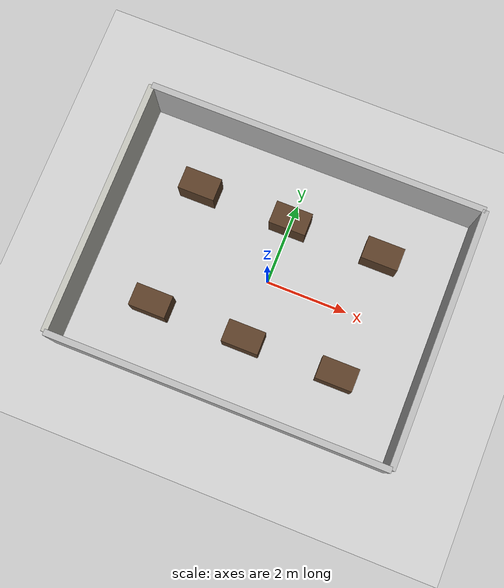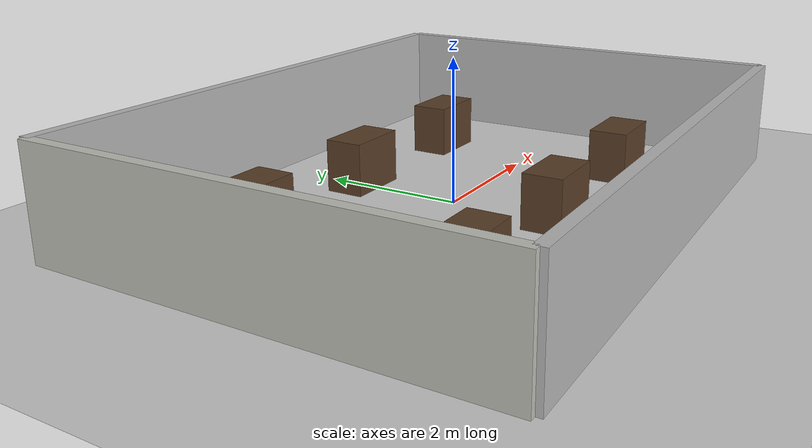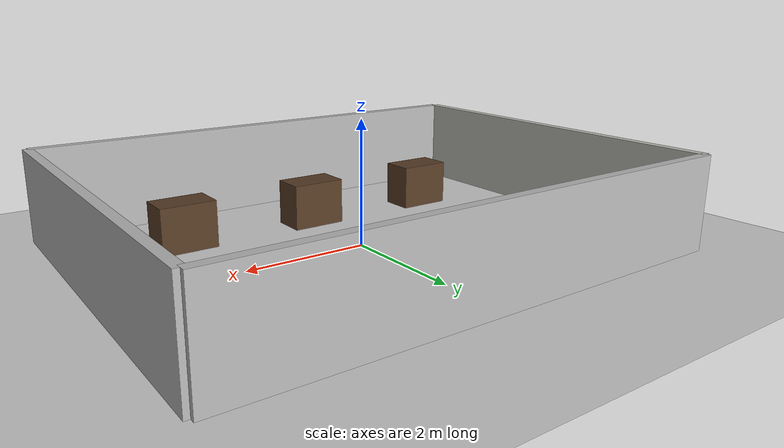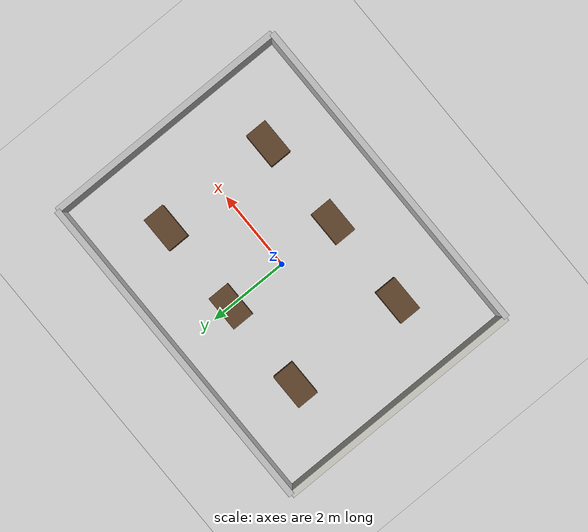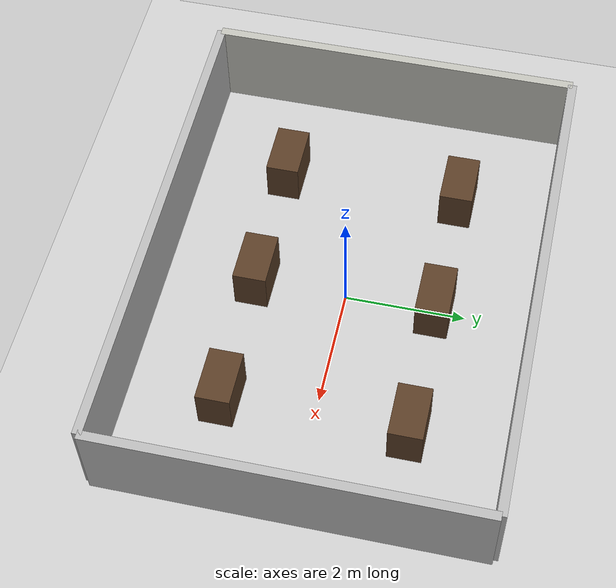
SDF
<?xml version="1.0"?>
<sdf version="1.6">
  <world name="tinker_office">
    <include><uri>model://ground_plane</uri></include>
    <include><uri>model://sun</uri></include>

    <model name="north_wall"><static>true</static><pose>0 3.1 0.75 0 0 0</pose><link name="wall"><collision name="collision"><geometry><box><size>8.2 0.15 1.5</size></box></geometry></collision><visual name="visual"><geometry><box><size>8.2 0.15 1.5</size></box></geometry></visual></link></model>
    <model name="south_wall"><static>true</static><pose>0 -3.1 0.75 0 0 0</pose><link name="wall"><collision name="collision"><geometry><box><size>8.2 0.15 1.5</size></box></geometry></collision><visual name="visual"><geometry><box><size>8.2 0.15 1.5</size></box></geometry></visual></link></model>
    <model name="east_wall"><static>true</static><pose>4.1 0 0.75 0 0 0</pose><link name="wall"><collision name="collision"><geometry><box><size>0.15 6.2 1.5</size></box></geometry></collision><visual name="visual"><geometry><box><size>0.15 6.2 1.5</size></box></geometry></visual></link></model>
    <model name="west_wall"><static>true</static><pose>-4.1 0 0.75 0 0 0</pose><link name="wall"><collision name="collision"><geometry><box><size>0.15 6.2 1.5</size></box></geometry></collision><visual name="visual"><geometry><box><size>0.15 6.2 1.5</size></box></geometry><material><ambient>0.75 0.75 0.72 1</ambient></material></visual></link></model>

    <model name="desk_1"><static>true</static><pose>-2.3 1.5 0.375 0 0 0</pose><link name="desk"><collision name="collision"><geometry><box><size>0.9 0.55 0.75</size></box></geometry></collision><visual name="visual"><geometry><box><size>0.9 0.55 0.75</size></box></geometry><material><ambient>0.35 0.24 0.15 1</ambient></material></visual></link></model>
    <model name="desk_2"><static>true</static><pose>0 1.5 0.375 0 0 0</pose><link name="desk"><collision name="collision"><geometry><box><size>0.9 0.55 0.75</size></box></geometry></collision><visual name="visual"><geometry><box><size>0.9 0.55 0.75</size></box></geometry><material><ambient>0.35 0.24 0.15 1</ambient></material></visual></link></model>
    <model name="desk_3"><static>true</static><pose>2.3 1.5 0.375 0 0 0</pose><link name="desk"><collision name="collision"><geometry><box><size>0.9 0.55 0.75</size></box></geometry></collision><visual name="visual"><geometry><box><size>0.9 0.55 0.75</size></box></geometry><material><ambient>0.35 0.24 0.15 1</ambient></material></visual></link></model>
    <model name="desk_4"><static>true</static><pose>-2.3 -1.5 0.375 0 0 0</pose><link name="desk"><collision name="collision"><geometry><box><size>0.9 0.55 0.75</size></box></geometry></collision><visual name="visual"><geometry><box><size>0.9 0.55 0.75</size></box></geometry><material><ambient>0.35 0.24 0.15 1</ambient></material></visual></link></model>
    <model name="desk_5"><static>true</static><pose>0 -1.5 0.375 0 0 0</pose><link name="desk"><collision name="collision"><geometry><box><size>0.9 0.55 0.75</size></box></geometry></collision><visual name="visual"><geometry><box><size>0.9 0.55 0.75</size></box></geometry><material><ambient>0.35 0.24 0.15 1</ambient></material></visual></link></model>
    <model name="desk_6"><static>true</static><pose>2.3 -1.5 0.375 0 0 0</pose><link name="desk"><collision name="collision"><geometry><box><size>0.9 0.55 0.75</size></box></geometry></collision><visual name="visual"><geometry><box><size>0.9 0.55 0.75</size></box></geometry><material><ambient>0.35 0.24 0.15 1</ambient></material></visual></link></model>

    <physics type="ode"><real_time_update_rate>1000</real_time_update_rate><max_step_size>0.001</max_step_size></physics>
  </world>
</sdf>
